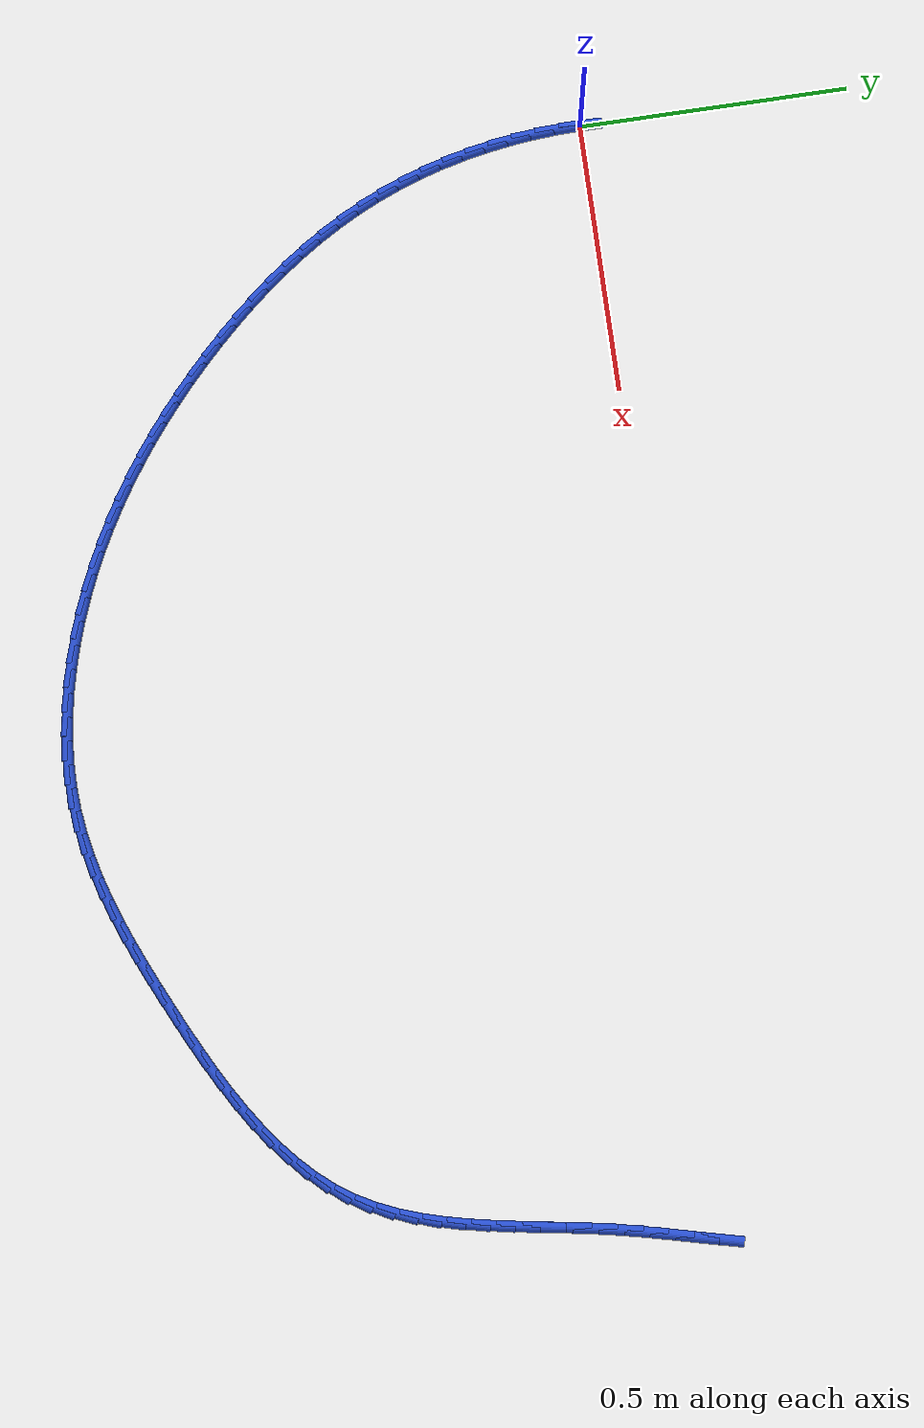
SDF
<sdf version="1.6">
 <world name="default">
  <model name="ground_plane">
   <static>1</static>
   <link name="link">
    <collision name="collision">
     <geometry><plane><normal>0 0 1</normal><size>100 100</size></plane></geometry>
     <surface><friction><ode><mu>100</mu><mu2>50</mu2></ode></friction></surface>
    </collision>
    <visual name="visual">
     <cast_shadows>0</cast_shadows>
     <geometry><plane><normal>0 0 1</normal><size>100 100</size></plane></geometry>
     <material>
      <script><uri>file://media/materials/scripts/gazebo.material</uri><name>Gazebo/WhiteGlow</name></script>
     </material>
    </visual>
   </link>
  </model>
  <model name="line">
   <link name="link_0">
    <pose>-3.469446951953614e-18 -8.326672684688674e-17 0.01 0 1.57 1.5598164352984312</pose>
    <collision name="collision">
     <geometry><cylinder><radius>0.01</radius><length>0.08</length></cylinder></geometry>
    </collision>
    <visual name="visual">
     <material>
      <script><name>Gazebo/Blue</name><uri>file://media/materials/scripts/gazebo.material</uri></script>
     </material>
     <geometry><cylinder><radius>0.01</radius><length>0.08</length></cylinder></geometry>
    </visual>
   </link>
   <link name="link_76">
    <pose>2.0715040072511393 -0.04315046472673503 0.01 0 1.57 1.329160259672644</pose>
    <collision name="collision">
     <geometry><cylinder><radius>0.01</radius><length>0.08</length></cylinder></geometry>
    </collision>
    <visual name="visual">
     <material>
      <script><name>Gazebo/Blue</name><uri>file://media/materials/scripts/gazebo.material</uri></script>
     </material>
     <geometry><cylinder><radius>0.01</radius><length>0.08</length></cylinder></geometry>
    </visual>
   </link>
   <link name="link_77">
    <pose>2.0605961894679887 -0.08740996514425102 0.01 0 1.57 1.324348041001283</pose>
    <collision name="collision">
     <geometry><cylinder><radius>0.01</radius><length>0.08</length></cylinder></geometry>
    </collision>
    <visual name="visual">
     <material>
      <script><name>Gazebo/Blue</name><uri>file://media/materials/scripts/gazebo.material</uri></script>
     </material>
     <geometry><cylinder><radius>0.01</radius><length>0.08</length></cylinder></geometry>
    </visual>
   </link>
   <link name="link_78">
    <pose>2.049366637095627 -0.13204925955263377 0.01 0 1.57 1.3306550899607796</pose>
    <collision name="collision">
     <geometry><cylinder><radius>0.01</radius><length>0.08</length></cylinder></geometry>
    </collision>
    <visual name="visual">
     <material>
      <script><name>Gazebo/Blue</name><uri>file://media/materials/scripts/gazebo.material</uri></script>
     </material>
     <geometry><cylinder><radius>0.01</radius><length>0.08</length></cylinder></geometry>
    </visual>
   </link>
   <link name="link_79">
    <pose>2.038343843348102 -0.17706480116359707 0.01 0 1.57 1.3479057259893066</pose>
    <collision name="collision">
     <geometry><cylinder><radius>0.01</radius><length>0.08</length></cylinder></geometry>
    </collision>
    <visual name="visual">
     <material>
      <script><name>Gazebo/Blue</name><uri>file://media/materials/scripts/gazebo.material</uri></script>
     </material>
     <geometry><cylinder><radius>0.01</radius><length>0.08</length></cylinder></geometry>
    </visual>
   </link>
   <link name="link_80">
    <pose>2.028056301439462 -0.2224530431888515 0.01 0 1.57 1.3736965591251578</pose>
    <collision name="collision">
     <geometry><cylinder><radius>0.01</radius><length>0.08</length></cylinder></geometry>
    </collision>
    <visual name="visual">
     <material>
      <script><name>Gazebo/Blue</name><uri>file://media/materials/scripts/gazebo.material</uri></script>
     </material>
     <geometry><cylinder><radius>0.01</radius><length>0.08</length></cylinder></geometry>
    </visual>
   </link>
   <link name="link_81">
    <pose>2.0189241202239034 -0.2681842852153856 0.01 0 1.57 1.3940105378915313</pose>
    <collision name="collision">
     <geometry><cylinder><radius>0.01</radius><length>0.08</length></cylinder></geometry>
    </collision>
    <visual name="visual">
     <material>
      <script><name>Gazebo/Blue</name><uri>file://media/materials/scripts/gazebo.material</uri></script>
     </material>
     <geometry><cylinder><radius>0.01</radius><length>0.08</length></cylinder></geometry>
    </visual>
   </link>
   <link name="link_82">
    <pose>2.010725881062205 -0.31407402341264123 0.01 0 1.57 1.4038133694773047</pose>
    <collision name="collision">
     <geometry><cylinder><radius>0.01</radius><length>0.08</length></cylinder></geometry>
    </collision>
    <visual name="visual">
     <material>
      <script><name>Gazebo/Blue</name><uri>file://media/materials/scripts/gazebo.material</uri></script>
     </material>
     <geometry><cylinder><radius>0.01</radius><length>0.08</length></cylinder></geometry>
    </visual>
   </link>
   <link name="link_83">
    <pose>2.003005000391621 -0.359881007615379 0.01 0 1.57 1.403082153198955</pose>
    <collision name="collision">
     <geometry><cylinder><radius>0.01</radius><length>0.08</length></cylinder></geometry>
    </collision>
    <visual name="visual">
     <material>
      <script><name>Gazebo/Blue</name><uri>file://media/materials/scripts/gazebo.material</uri></script>
     </material>
     <geometry><cylinder><radius>0.01</radius><length>0.08</length></cylinder></geometry>
    </visual>
   </link>
   <link name="link_84">
    <pose>1.9953045389830517 -0.40536390183450044 0.01 0 1.57 1.3915857797901239</pose>
    <collision name="collision">
     <geometry><cylinder><radius>0.01</radius><length>0.08</length></cylinder></geometry>
    </collision>
    <visual name="visual">
     <material>
      <script><name>Gazebo/Blue</name><uri>file://media/materials/scripts/gazebo.material</uri></script>
     </material>
     <geometry><cylinder><radius>0.01</radius><length>0.08</length></cylinder></geometry>
    </visual>
   </link>
   <link name="link_85">
    <pose>1.9871675576073982 -0.4502813700809036 0.01 0 1.57 1.3688643464746402</pose>
    <collision name="collision">
     <geometry><cylinder><radius>0.01</radius><length>0.08</length></cylinder></geometry>
    </collision>
    <visual name="visual">
     <material>
      <script><name>Gazebo/Blue</name><uri>file://media/materials/scripts/gazebo.material</uri></script>
     </material>
     <geometry><cylinder><radius>0.01</radius><length>0.08</length></cylinder></geometry>
    </visual>
   </link>
   <link name="link_86">
    <pose>1.978137117035562 -0.4943920763654899 0.01 0 1.57 1.3342456611321198</pose>
    <collision name="collision">
     <geometry><cylinder><radius>0.01</radius><length>0.08</length></cylinder></geometry>
    </collision>
    <visual name="visual">
     <material>
      <script><name>Gazebo/Blue</name><uri>file://media/materials/scripts/gazebo.material</uri></script>
     </material>
     <geometry><cylinder><radius>0.01</radius><length>0.08</length></cylinder></geometry>
    </visual>
   </link>
   <link name="link_87">
    <pose>1.9677562780384443 -0.5374546846991586 0.01 0 1.57 1.286906600874213</pose>
    <collision name="collision">
     <geometry><cylinder><radius>0.01</radius><length>0.08</length></cylinder></geometry>
    </collision>
    <visual name="visual">
     <material>
      <script><name>Gazebo/Blue</name><uri>file://media/materials/scripts/gazebo.material</uri></script>
     </material>
     <geometry><cylinder><radius>0.01</radius><length>0.08</length></cylinder></geometry>
    </visual>
   </link>
   <link name="link_88">
    <pose>1.9555681013869468 -0.5792278590928088 0.01 0 1.57 1.2260067676684092</pose>
    <collision name="collision">
     <geometry><cylinder><radius>0.01</radius><length>0.08</length></cylinder></geometry>
    </collision>
    <visual name="visual">
     <material>
      <script><name>Gazebo/Blue</name><uri>file://media/materials/scripts/gazebo.material</uri></script>
     </material>
     <geometry><cylinder><radius>0.01</radius><length>0.08</length></cylinder></geometry>
    </visual>
   </link>
   <link name="link_89">
    <pose>1.9411156478519696 -0.6194702635573418 0.01 0 1.57 1.1509287408636033</pose>
    <collision name="collision">
     <geometry><cylinder><radius>0.01</radius><length>0.08</length></cylinder></geometry>
    </collision>
    <visual name="visual">
     <material>
      <script><name>Gazebo/Blue</name><uri>file://media/materials/scripts/gazebo.material</uri></script>
     </material>
     <geometry><cylinder><radius>0.01</radius><length>0.08</length></cylinder></geometry>
    </visual>
   </link>
   <link name="link_90">
    <pose>1.9239419782044151 -0.6579405621036566 0.01 0 1.57 1.0616457165171986</pose>
    <collision name="collision">
     <geometry><cylinder><radius>0.01</radius><length>0.08</length></cylinder></geometry>
    </collision>
    <visual name="visual">
     <material>
      <script><name>Gazebo/Blue</name><uri>file://media/materials/scripts/gazebo.material</uri></script>
     </material>
     <geometry><cylinder><radius>0.01</radius><length>0.08</length></cylinder></geometry>
    </visual>
   </link>
   <link name="link_91">
    <pose>1.903590153215184 -0.6943974187426525 0.01 0 1.57 0.9605851566401056</pose>
    <collision name="collision">
     <geometry><cylinder><radius>0.01</radius><length>0.08</length></cylinder></geometry>
    </collision>
    <visual name="visual">
     <material>
      <script><name>Gazebo/Blue</name><uri>file://media/materials/scripts/gazebo.material</uri></script>
     </material>
     <geometry><cylinder><radius>0.01</radius><length>0.08</length></cylinder></geometry>
    </visual>
   </link>
   <link name="link_92">
    <pose>1.8796565467230766 -0.7286257782775234 0.01 0 1.57 0.8627954931183984</pose>
    <collision name="collision">
     <geometry><cylinder><radius>0.01</radius><length>0.08</length></cylinder></geometry>
    </collision>
    <visual name="visual">
     <material>
      <script><name>Gazebo/Blue</name><uri>file://media/materials/scripts/gazebo.material</uri></script>
     </material>
     <geometry><cylinder><radius>0.01</radius><length>0.08</length></cylinder></geometry>
    </visual>
   </link>
   <link name="link_93">
    <pose>1.852236380662667 -0.7606564937607387 0.01 0 1.57 0.7764635203139421</pose>
    <collision name="collision">
     <geometry><cylinder><radius>0.01</radius><length>0.08</length></cylinder></geometry>
    </collision>
    <visual name="visual">
     <material>
      <script><name>Gazebo/Blue</name><uri>file://media/materials/scripts/gazebo.material</uri></script>
     </material>
     <geometry><cylinder><radius>0.01</radius><length>0.08</length></cylinder></geometry>
    </visual>
   </link>
   <link name="link_94">
    <pose>1.8216972805991625 -0.7906547002044964 0.01 0 1.57 0.7016564959902788</pose>
    <collision name="collision">
     <geometry><cylinder><radius>0.01</radius><length>0.08</length></cylinder></geometry>
    </collision>
    <visual name="visual">
     <material>
      <script><name>Gazebo/Blue</name><uri>file://media/materials/scripts/gazebo.material</uri></script>
     </material>
     <geometry><cylinder><radius>0.01</radius><length>0.08</length></cylinder></geometry>
    </visual>
   </link>
   <link name="link_95">
    <pose>1.788409631267639 -0.8187868927597547 0.01 0 1.57 0.6377941107638713</pose>
    <collision name="collision">
     <geometry><cylinder><radius>0.01</radius><length>0.08</length></cylinder></geometry>
    </collision>
    <visual name="visual">
     <material>
      <script><name>Gazebo/Blue</name><uri>file://media/materials/scripts/gazebo.material</uri></script>
     </material>
     <geometry><cylinder><radius>0.01</radius><length>0.08</length></cylinder></geometry>
    </visual>
   </link>
   <link name="link_96">
    <pose>1.7527438174031709 -0.8452195665774717 0.01 0 1.57 0.5840213181894505</pose>
    <collision name="collision">
     <geometry><cylinder><radius>0.01</radius><length>0.08</length></cylinder></geometry>
    </collision>
    <visual name="visual">
     <material>
      <script><name>Gazebo/Blue</name><uri>file://media/materials/scripts/gazebo.material</uri></script>
     </material>
     <geometry><cylinder><radius>0.01</radius><length>0.08</length></cylinder></geometry>
    </visual>
   </link>
   <link name="link_97">
    <pose>1.7150702237408317 -0.870119216808607 0.01 0 1.57 0.5394187411603008</pose>
    <collision name="collision">
     <geometry><cylinder><radius>0.01</radius><length>0.08</length></cylinder></geometry>
    </collision>
    <visual name="visual">
     <material>
      <script><name>Gazebo/Blue</name><uri>file://media/materials/scripts/gazebo.material</uri></script>
     </material>
     <geometry><cylinder><radius>0.01</radius><length>0.08</length></cylinder></geometry>
    </visual>
   </link>
   <link name="link_98">
    <pose>1.675759235015697 -0.893652338604118 0.01 0 1.57 0.5031305489377355</pose>
    <collision name="collision">
     <geometry><cylinder><radius>0.01</radius><length>0.08</length></cylinder></geometry>
    </collision>
    <visual name="visual">
     <material>
      <script><name>Gazebo/Blue</name><uri>file://media/materials/scripts/gazebo.material</uri></script>
     </material>
     <geometry><cylinder><radius>0.01</radius><length>0.08</length></cylinder></geometry>
    </visual>
   </link>
   <link name="link_99">
    <pose>1.6351812359628393 -0.9159854271149641 0.01 0 1.57 0.4744336564687271</pose>
    <collision name="collision">
     <geometry><cylinder><radius>0.01</radius><length>0.08</length></cylinder></geometry>
    </collision>
    <visual name="visual">
     <material>
      <script><name>Gazebo/Blue</name><uri>file://media/materials/scripts/gazebo.material</uri></script>
     </material>
     <geometry><cylinder><radius>0.01</radius><length>0.08</length></cylinder></geometry>
    </visual>
   </link>
   <link name="link_100">
    <pose>1.593706611317334 -0.9372849774921037 0.01 0 1.57 0.45277180861788796</pose>
    <collision name="collision">
     <geometry><cylinder><radius>0.01</radius><length>0.08</length></cylinder></geometry>
    </collision>
    <visual name="visual">
     <material>
      <script><name>Gazebo/Blue</name><uri>file://media/materials/scripts/gazebo.material</uri></script>
     </material>
     <geometry><cylinder><radius>0.01</radius><length>0.08</length></cylinder></geometry>
    </visual>
   </link>
   <link name="link_101">
    <pose>1.5517057458142562 -0.9577174848864947 0.01 0 1.57 0.4377715025479842</pose>
    <collision name="collision">
     <geometry><cylinder><radius>0.01</radius><length>0.08</length></cylinder></geometry>
    </collision>
    <visual name="visual">
     <material>
      <script><name>Gazebo/Blue</name><uri>file://media/materials/scripts/gazebo.material</uri></script>
     </material>
     <geometry><cylinder><radius>0.01</radius><length>0.08</length></cylinder></geometry>
    </visual>
   </link>
   <link name="link_102">
    <pose>1.509548994104571 -0.9774494148581918 0.01 0 1.57 0.4266758148248366</pose>
    <collision name="collision">
     <geometry><cylinder><radius>0.01</radius><length>0.08</length></cylinder></geometry>
    </collision>
    <visual name="visual">
     <material>
      <script><name>Gazebo/Blue</name><uri>file://media/materials/scripts/gazebo.material</uri></script>
     </material>
     <geometry><cylinder><radius>0.01</radius><length>0.08</length></cylinder></geometry>
    </visual>
   </link>
   <link name="link_103">
    <pose>1.4675158350894577 -0.996557847047718 0.01 0 1.57 0.4111076274381945</pose>
    <collision name="collision">
     <geometry><cylinder><radius>0.01</radius><length>0.08</length></cylinder></geometry>
    </collision>
    <visual name="visual">
     <material>
      <script><name>Gazebo/Blue</name><uri>file://media/materials/scripts/gazebo.material</uri></script>
     </material>
     <geometry><cylinder><radius>0.01</radius><length>0.08</length></cylinder></geometry>
    </visual>
   </link>
   <link name="link_104">
    <pose>1.4255945073971952 -1.0148333954580837 0.01 0 1.57 0.389208058354431</pose>
    <collision name="collision">
     <geometry><cylinder><radius>0.01</radius><length>0.08</length></cylinder></geometry>
    </collision>
    <visual name="visual">
     <material>
      <script><name>Gazebo/Blue</name><uri>file://media/materials/scripts/gazebo.material</uri></script>
     </material>
     <geometry><cylinder><radius>0.01</radius><length>0.08</length></cylinder></geometry>
    </visual>
   </link>
   <link name="link_105">
    <pose>1.3837150258001334 -1.0320094047667325 0.01 0 1.57 0.36074525830218057</pose>
    <collision name="collision">
     <geometry><cylinder><radius>0.01</radius><length>0.08</length></cylinder></geometry>
    </collision>
    <visual name="visual">
     <material>
      <script><name>Gazebo/Blue</name><uri>file://media/materials/scripts/gazebo.material</uri></script>
     </material>
     <geometry><cylinder><radius>0.01</radius><length>0.08</length></cylinder></geometry>
    </visual>
   </link>
   <link name="link_106">
    <pose>1.3418074050706228 -1.0478192196511071 0.01 0 1.57 0.32549641453412326</pose>
    <collision name="collision">
     <geometry><cylinder><radius>0.01</radius><length>0.08</length></cylinder></geometry>
    </collision>
    <visual name="visual">
     <material>
      <script><name>Gazebo/Blue</name><uri>file://media/materials/scripts/gazebo.material</uri></script>
     </material>
     <geometry><cylinder><radius>0.01</radius><length>0.08</length></cylinder></geometry>
    </visual>
   </link>
   <link name="link_107">
    <pose>1.2998016599810125 -1.0619961847886508 0.01 0 1.57 0.28328601926004393</pose>
    <collision name="collision">
     <geometry><cylinder><radius>0.01</radius><length>0.08</length></cylinder></geometry>
    </collision>
    <visual name="visual">
     <material>
      <script><name>Gazebo/Blue</name><uri>file://media/materials/scripts/gazebo.material</uri></script>
     </material>
     <geometry><cylinder><radius>0.01</radius><length>0.08</length></cylinder></geometry>
    </visual>
   </link>
   <link name="link_108">
    <pose>1.2576278053036536 -1.0742736448568064 0.01 0 1.57 0.23403806350312972</pose>
    <collision name="collision">
     <geometry><cylinder><radius>0.01</radius><length>0.08</length></cylinder></geometry>
    </collision>
    <visual name="visual">
     <material>
      <script><name>Gazebo/Blue</name><uri>file://media/materials/scripts/gazebo.material</uri></script>
     </material>
     <geometry><cylinder><radius>0.01</radius><length>0.08</length></cylinder></geometry>
    </visual>
   </link>
   <link name="link_109">
    <pose>1.215215855810896 -1.0843849445330171 0.01 0 1.57 0.1778407656540356</pose>
    <collision name="collision">
     <geometry><cylinder><radius>0.01</radius><length>0.08</length></cylinder></geometry>
    </collision>
    <visual name="visual">
     <material>
      <script><name>Gazebo/Blue</name><uri>file://media/materials/scripts/gazebo.material</uri></script>
     </material>
     <geometry><cylinder><radius>0.01</radius><length>0.08</length></cylinder></geometry>
    </visual>
   </link>
   <link name="link_110">
    <pose>1.1724958262750889 -1.0920634284947262 0.01 0 1.57 0.11501755951792855</pose>
    <collision name="collision">
     <geometry><cylinder><radius>0.01</radius><length>0.08</length></cylinder></geometry>
    </collision>
    <visual name="visual">
     <material>
      <script><name>Gazebo/Blue</name><uri>file://media/materials/scripts/gazebo.material</uri></script>
     </material>
     <geometry><cylinder><radius>0.01</radius><length>0.08</length></cylinder></geometry>
    </visual>
   </link>
   <link name="link_111">
    <pose>1.1293977314685835 -1.097042441419376 0.01 0 1.57 0.04678879548639768</pose>
    <collision name="collision">
     <geometry><cylinder><radius>0.01</radius><length>0.08</length></cylinder></geometry>
    </collision>
    <visual name="visual">
     <material>
      <script><name>Gazebo/Blue</name><uri>file://media/materials/scripts/gazebo.material</uri></script>
     </material>
     <geometry><cylinder><radius>0.01</radius><length>0.08</length></cylinder></geometry>
    </visual>
   </link>
   <link name="link_112">
    <pose>1.0858652700116629 -1.0990807604961519 0.01 0 1.57 -0.020163568707413395</pose>
    <collision name="collision">
     <geometry><cylinder><radius>0.01</radius><length>0.08</length></cylinder></geometry>
    </collision>
    <visual name="visual">
     <material>
      <script><name>Gazebo/Blue</name><uri>file://media/materials/scripts/gazebo.material</uri></script>
     </material>
     <geometry><cylinder><radius>0.01</radius><length>0.08</length></cylinder></geometry>
    </visual>
   </link>
   <link name="link_113">
    <pose>1.0419812898430825 -1.098195782908651 0.01 0 1.57 -0.08240773458560884</pose>
    <collision name="collision">
     <geometry><cylinder><radius>0.01</radius><length>0.08</length></cylinder></geometry>
    </collision>
    <visual name="visual">
     <material>
      <script><name>Gazebo/Blue</name><uri>file://media/materials/scripts/gazebo.material</uri></script>
     </material>
     <geometry><cylinder><radius>0.01</radius><length>0.08</length></cylinder></geometry>
    </visual>
   </link>
   <link name="link_114">
    <pose>0.9979097760296226 -1.094555705598788 0.01 0 1.57 -0.14025086041407026</pose>
    <collision name="collision">
     <geometry><cylinder><radius>0.01</radius><length>0.08</length></cylinder></geometry>
    </collision>
    <visual name="visual">
     <material>
      <script><name>Gazebo/Blue</name><uri>file://media/materials/scripts/gazebo.material</uri></script>
     </material>
     <geometry><cylinder><radius>0.01</radius><length>0.08</length></cylinder></geometry>
    </visual>
   </link>
   <link name="link_115">
    <pose>0.9538157259577992 -1.0883306069846328 0.01 0 1.57 -0.19410578158353997</pose>
    <collision name="collision">
     <geometry><cylinder><radius>0.01</radius><length>0.08</length></cylinder></geometry>
    </collision>
    <visual name="visual">
     <material>
      <script><name>Gazebo/Blue</name><uri>file://media/materials/scripts/gazebo.material</uri></script>
     </material>
     <geometry><cylinder><radius>0.01</radius><length>0.08</length></cylinder></geometry>
    </visual>
   </link>
   <link name="link_116">
    <pose>0.9098641370141283 -1.0796905654842555 0.01 0 1.57 -0.2444151683607285</pose>
    <collision name="collision">
     <geometry><cylinder><radius>0.01</radius><length>0.08</length></cylinder></geometry>
    </collision>
    <visual name="visual">
     <material>
      <script><name>Gazebo/Blue</name><uri>file://media/materials/scripts/gazebo.material</uri></script>
     </material>
     <geometry><cylinder><radius>0.01</radius><length>0.08</length></cylinder></geometry>
    </visual>
   </link>
   <link name="link_117">
    <pose>0.8662200065851273 -1.0688056595157256 0.01 0 1.57 -0.2916308219514238</pose>
    <collision name="collision">
     <geometry><cylinder><radius>0.01</radius><length>0.08</length></cylinder></geometry>
    </collision>
    <visual name="visual">
     <material>
      <script><name>Gazebo/Blue</name><uri>file://media/materials/scripts/gazebo.material</uri></script>
     </material>
     <geometry><cylinder><radius>0.01</radius><length>0.08</length></cylinder></geometry>
    </visual>
   </link>
   <link name="link_118">
    <pose>0.8230483320573105 -1.0558459674971126 0.01 0 1.57 -0.33620185513020273</pose>
    <collision name="collision">
     <geometry><cylinder><radius>0.01</radius><length>0.08</length></cylinder></geometry>
    </collision>
    <visual name="visual">
     <material>
      <script><name>Gazebo/Blue</name><uri>file://media/materials/scripts/gazebo.material</uri></script>
     </material>
     <geometry><cylinder><radius>0.01</radius><length>0.08</length></cylinder></geometry>
    </visual>
   </link>
   <link name="link_119">
    <pose>0.7805141108171963 -1.040981567846487 0.01 0 1.57 -0.378578694579235</pose>
    <collision name="collision">
     <geometry><cylinder><radius>0.01</radius><length>0.08</length></cylinder></geometry>
    </collision>
    <visual name="visual">
     <material>
      <script><name>Gazebo/Blue</name><uri>file://media/materials/scripts/gazebo.material</uri></script>
     </material>
     <geometry><cylinder><radius>0.01</radius><length>0.08</length></cylinder></geometry>
    </visual>
   </link>
   <link name="link_120">
    <pose>0.7387804064145477 -1.024381335525108 0.01 0 1.57 -0.4194504736343555</pose>
    <collision name="collision">
     <geometry><cylinder><radius>0.01</radius><length>0.08</length></cylinder></geometry>
    </collision>
    <visual name="visual">
     <material>
      <script><name>Gazebo/Blue</name><uri>file://media/materials/scripts/gazebo.material</uri></script>
     </material>
     <geometry><cylinder><radius>0.01</radius><length>0.08</length></cylinder></geometry>
    </visual>
   </link>
   <link name="link_121">
    <pose>0.6979379341349345 -1.0061691220396067 0.01 0 1.57 -0.45926047987700364</pose>
    <collision name="collision">
     <geometry><cylinder><radius>0.01</radius><length>0.08</length></cylinder></geometry>
    </collision>
    <visual name="visual">
     <material>
      <script><name>Gazebo/Blue</name><uri>file://media/materials/scripts/gazebo.material</uri></script>
     </material>
     <geometry><cylinder><radius>0.01</radius><length>0.08</length></cylinder></geometry>
    </visual>
   </link>
   <link name="link_122">
    <pose>0.6579850313003628 -0.986411290647277 0.01 0 1.57 -0.4979524151502297</pose>
    <collision name="collision">
     <geometry><cylinder><radius>0.01</radius><length>0.08</length></cylinder></geometry>
    </collision>
    <visual name="visual">
     <material>
      <script><name>Gazebo/Blue</name><uri>file://media/materials/scripts/gazebo.material</uri></script>
     </material>
     <geometry><cylinder><radius>0.01</radius><length>0.08</length></cylinder></geometry>
    </visual>
   </link>
   <link name="link_123">
    <pose>0.6189140202995671 -0.9651704614185065 0.01 0 1.57 -0.5354600196006363</pose>
    <collision name="collision">
     <geometry><cylinder><radius>0.01</radius><length>0.08</length></cylinder></geometry>
    </collision>
    <visual name="visual">
     <material>
      <script><name>Gazebo/Blue</name><uri>file://media/materials/scripts/gazebo.material</uri></script>
     </material>
     <geometry><cylinder><radius>0.01</radius><length>0.08</length></cylinder></geometry>
    </visual>
   </link>
   <link name="link_124">
    <pose>0.5807172235212831 -0.9425092544236832 0.01 0 1.57 -0.5717342941273684</pose>
    <collision name="collision">
     <geometry><cylinder><radius>0.01</radius><length>0.08</length></cylinder></geometry>
    </collision>
    <visual name="visual">
     <material>
      <script><name>Gazebo/Blue</name><uri>file://media/materials/scripts/gazebo.material</uri></script>
     </material>
     <geometry><cylinder><radius>0.01</radius><length>0.08</length></cylinder></geometry>
    </visual>
   </link>
   <link name="link_125">
    <pose>0.5433869633542462 -0.9184902897331948 0.01 0 1.57 -0.6067423458446698</pose>
    <collision name="collision">
     <geometry><cylinder><radius>0.01</radius><length>0.08</length></cylinder></geometry>
    </collision>
    <visual name="visual">
     <material>
      <script><name>Gazebo/Blue</name><uri>file://media/materials/scripts/gazebo.material</uri></script>
     </material>
     <geometry><cylinder><radius>0.01</radius><length>0.08</length></cylinder></geometry>
    </visual>
   </link>
   <link name="link_126">
    <pose>0.506915562187191 -0.8931761874174291 0.01 0 1.57 -0.6404659226778432</pose>
    <collision name="collision">
     <geometry><cylinder><radius>0.01</radius><length>0.08</length></cylinder></geometry>
    </collision>
    <visual name="visual">
     <material>
      <script><name>Gazebo/Blue</name><uri>file://media/materials/scripts/gazebo.material</uri></script>
     </material>
     <geometry><cylinder><radius>0.01</radius><length>0.08</length></cylinder></geometry>
    </visual>
   </link>
   <link name="link_127">
    <pose>0.4712953424088539 -0.8666295675467746 0.01 0 1.57 -0.6728997577431134</pose>
    <collision name="collision">
     <geometry><cylinder><radius>0.01</radius><length>0.08</length></cylinder></geometry>
    </collision>
    <visual name="visual">
     <material>
      <script><name>Gazebo/Blue</name><uri>file://media/materials/scripts/gazebo.material</uri></script>
     </material>
     <geometry><cylinder><radius>0.01</radius><length>0.08</length></cylinder></geometry>
    </visual>
   </link>
   <link name="link_128">
    <pose>0.43651862640796874 -0.8389130501916181 0.01 0 1.57 -0.7040498292487191</pose>
    <collision name="collision">
     <geometry><cylinder><radius>0.01</radius><length>0.08</length></cylinder></geometry>
    </collision>
    <visual name="visual">
     <material>
      <script><name>Gazebo/Blue</name><uri>file://media/materials/scripts/gazebo.material</uri></script>
     </material>
     <geometry><cylinder><radius>0.01</radius><length>0.08</length></cylinder></geometry>
    </visual>
   </link>
   <link name="link_129">
    <pose>0.40257773657327156 -0.810089255422348 0.01 0 1.57 -0.733931622515453</pose>
    <collision name="collision">
     <geometry><cylinder><radius>0.01</radius><length>0.08</length></cylinder></geometry>
    </collision>
    <visual name="visual">
     <material>
      <script><name>Gazebo/Blue</name><uri>file://media/materials/scripts/gazebo.material</uri></script>
     </material>
     <geometry><cylinder><radius>0.01</radius><length>0.08</length></cylinder></geometry>
    </visual>
   </link>
   <link name="link_130">
    <pose>0.3694649952934981 -0.7802208033093527 0.01 0 1.57 -0.7625684602891009</pose>
    <collision name="collision">
     <geometry><cylinder><radius>0.01</radius><length>0.08</length></cylinder></geometry>
    </collision>
    <visual name="visual">
     <material>
      <script><name>Gazebo/Blue</name><uri>file://media/materials/scripts/gazebo.material</uri></script>
     </material>
     <geometry><cylinder><radius>0.01</radius><length>0.08</length></cylinder></geometry>
    </visual>
   </link>
   <link name="link_131">
    <pose>0.3371727249573825 -0.7493703139230189 0.01 0 1.57 -0.7902639805560009</pose>
    <collision name="collision">
     <geometry><cylinder><radius>0.01</radius><length>0.08</length></cylinder></geometry>
    </collision>
    <visual name="visual">
     <material>
      <script><name>Gazebo/Blue</name><uri>file://media/materials/scripts/gazebo.material</uri></script>
     </material>
     <geometry><cylinder><radius>0.01</radius><length>0.08</length></cylinder></geometry>
    </visual>
   </link>
   <link name="link_132">
    <pose>0.3057050552435098 -0.7175949125601011 0.01 0 1.57 -0.8190907465038635</pose>
    <collision name="collision">
     <geometry><cylinder><radius>0.01</radius><length>0.08</length></cylinder></geometry>
    </collision>
    <visual name="visual">
     <material>
      <script><name>Gazebo/Blue</name><uri>file://media/materials/scripts/gazebo.material</uri></script>
     </material>
     <geometry><cylinder><radius>0.01</radius><length>0.08</length></cylinder></geometry>
    </visual>
   </link>
   <link name="link_133">
    <pose>0.2751528743847074 -0.6849113495775844 0.01 0 1.57 -0.8500599981093695</pose>
    <collision name="collision">
     <geometry><cylinder><radius>0.01</radius><length>0.08</length></cylinder></geometry>
    </collision>
    <visual name="visual">
     <material>
      <script><name>Gazebo/Blue</name><uri>file://media/materials/scripts/gazebo.material</uri></script>
     </material>
     <geometry><cylinder><radius>0.01</radius><length>0.08</length></cylinder></geometry>
    </visual>
   </link>
   <link name="link_134">
    <pose>0.2456457594392124 -0.6513183706641088 0.01 0 1.57 -0.8832991504442635</pose>
    <collision name="collision">
     <geometry><cylinder><radius>0.01</radius><length>0.08</length></cylinder></geometry>
    </collision>
    <visual name="visual">
     <material>
      <script><name>Gazebo/Blue</name><uri>file://media/materials/scripts/gazebo.material</uri></script>
     </material>
     <geometry><cylinder><radius>0.01</radius><length>0.08</length></cylinder></geometry>
    </visual>
   </link>
   <link name="link_135">
    <pose>0.21731346578558186 -0.616814638523157 0.01 0 1.57 -0.9189298476828444</pose>
    <collision name="collision">
     <geometry><cylinder><radius>0.01</radius><length>0.08</length></cylinder></geometry>
    </collision>
    <visual name="visual">
     <material>
      <script><name>Gazebo/Blue</name><uri>file://media/materials/scripts/gazebo.material</uri></script>
     </material>
     <geometry><cylinder><radius>0.01</radius><length>0.08</length></cylinder></geometry>
    </visual>
   </link>
   <link name="link_136">
    <pose>0.19028574880237176 -0.5813988158582111 0.01 0 1.57 -0.9570671317661855</pose>
    <collision name="collision">
     <geometry><cylinder><radius>0.01</radius><length>0.08</length></cylinder></geometry>
    </collision>
    <visual name="visual">
     <material>
      <script><name>Gazebo/Blue</name><uri>file://media/materials/scripts/gazebo.material</uri></script>
     </material>
     <geometry><cylinder><radius>0.01</radius><length>0.08</length></cylinder></geometry>
    </visual>
   </link>
   <link name="link_137">
    <pose>0.16469236386813915 -0.5450695653727538 0.01 0 1.57 -0.9978131147379058</pose>
    <collision name="collision">
     <geometry><cylinder><radius>0.01</radius><length>0.08</length></cylinder></geometry>
    </collision>
    <visual name="visual">
     <material>
      <script><name>Gazebo/Blue</name><uri>file://media/materials/scripts/gazebo.material</uri></script>
     </material>
     <geometry><cylinder><radius>0.01</radius><length>0.08</length></cylinder></geometry>
    </visual>
   </link>
   <link name="link_138">
    <pose>0.14066306636144138 -0.5078255497702686 0.01 0 1.57 -1.0412491868298368</pose>
    <collision name="collision">
     <geometry><cylinder><radius>0.01</radius><length>0.08</length></cylinder></geometry>
    </collision>
    <visual name="visual">
     <material>
      <script><name>Gazebo/Blue</name><uri>file://media/materials/scripts/gazebo.material</uri></script>
     </material>
     <geometry><cylinder><radius>0.01</radius><length>0.08</length></cylinder></geometry>
    </visual>
   </link>
   <link name="link_139">
    <pose>0.11832761166083419 -0.46966543175423686 0.01 0 1.57 -1.0874267891838285</pose>
    <collision name="collision">
     <geometry><cylinder><radius>0.01</radius><length>0.08</length></cylinder></geometry>
    </collision>
    <visual name="visual">
     <material>
      <script><name>Gazebo/Blue</name><uri>file://media/materials/scripts/gazebo.material</uri></script>
     </material>
     <geometry><cylinder><radius>0.01</radius><length>0.08</length></cylinder></geometry>
    </visual>
   </link>
   <link name="link_140">
    <pose>0.09781575514487519 -0.43058787402814236 0.01 0 1.57 -1.1363145249576734</pose>
    <collision name="collision">
     <geometry><cylinder><radius>0.01</radius><length>0.08</length></cylinder></geometry>
    </collision>
    <visual name="visual">
     <material>
      <script><name>Gazebo/Blue</name><uri>file://media/materials/scripts/gazebo.material</uri></script>
     </material>
     <geometry><cylinder><radius>0.01</radius><length>0.08</length></cylinder></geometry>
    </visual>
   </link>
   <link name="link_141">
    <pose>0.07925558155147962 -0.3905923878355443 0.01 0 1.57 -1.1862357922271558</pose>
    <collision name="collision">
     <geometry><cylinder><radius>0.01</radius><length>0.08</length></cylinder></geometry>
    </collision>
    <visual name="visual">
     <material>
      <script><name>Gazebo/Blue</name><uri>file://media/materials/scripts/gazebo.material</uri></script>
     </material>
     <geometry><cylinder><radius>0.01</radius><length>0.08</length></cylinder></geometry>
    </visual>
   </link>
   <link name="link_142">
    <pose>0.06271057493287087 -0.349711295947211 0.01 0 1.57 -1.2350208158136557</pose>
    <collision name="collision">
     <geometry><cylinder><radius>0.01</radius><length>0.08</length></cylinder></geometry>
    </collision>
    <visual name="visual">
     <material>
      <script><name>Gazebo/Blue</name><uri>file://media/materials/scripts/gazebo.material</uri></script>
     </material>
     <geometry><cylinder><radius>0.01</radius><length>0.08</length></cylinder></geometry>
    </visual>
   </link>
   <link name="link_143">
    <pose>0.04816050007980464 -0.3080194432340412 0.01 0 1.57 -1.2825111704678926</pose>
    <collision name="collision">
     <geometry><cylinder><radius>0.01</radius><length>0.08</length></cylinder></geometry>
    </collision>
    <visual name="visual">
     <material>
      <script><name>Gazebo/Blue</name><uri>file://media/materials/scripts/gazebo.material</uri></script>
     </material>
     <geometry><cylinder><radius>0.01</radius><length>0.08</length></cylinder></geometry>
    </visual>
   </link>
   <link name="link_144">
    <pose>0.0355795466881909 -0.26559450623000497 0.01 0 1.57 -1.3287132538368165</pose>
    <collision name="collision">
     <geometry><cylinder><radius>0.01</radius><length>0.08</length></cylinder></geometry>
    </collision>
    <visual name="visual">
     <material>
      <script><name>Gazebo/Blue</name><uri>file://media/materials/scripts/gazebo.material</uri></script>
     </material>
     <geometry><cylinder><radius>0.01</radius><length>0.08</length></cylinder></geometry>
    </visual>
   </link>
   <link name="link_145">
    <pose>0.024941904453940494 -0.22251416146907474 0.01 0 1.57 -1.373653482446567</pose>
    <collision name="collision">
     <geometry><cylinder><radius>0.01</radius><length>0.08</length></cylinder></geometry>
    </collision>
    <visual name="visual">
     <material>
      <script><name>Gazebo/Blue</name><uri>file://media/materials/scripts/gazebo.material</uri></script>
     </material>
     <geometry><cylinder><radius>0.01</radius><length>0.08</length></cylinder></geometry>
    </visual>
   </link>
   <link name="link_146">
    <pose>0.016221763072963493 -0.1788560854852207 0.01 0 1.57 -1.4173751936479329</pose>
    <collision name="collision">
     <geometry><cylinder><radius>0.01</radius><length>0.08</length></cylinder></geometry>
    </collision>
    <visual name="visual">
     <material>
      <script><name>Gazebo/Blue</name><uri>file://media/materials/scripts/gazebo.material</uri></script>
     </material>
     <geometry><cylinder><radius>0.01</radius><length>0.08</length></cylinder></geometry>
    </visual>
   </link>
   <link name="link_147">
    <pose>0.009393312241170515 -0.1346979548124147 0.01 0 1.57 -1.4599356859624688</pose>
    <collision name="collision">
     <geometry><cylinder><radius>0.01</radius><length>0.08</length></cylinder></geometry>
    </collision>
    <visual name="visual">
     <material>
      <script><name>Gazebo/Blue</name><uri>file://media/materials/scripts/gazebo.material</uri></script>
     </material>
     <geometry><cylinder><radius>0.01</radius><length>0.08</length></cylinder></geometry>
    </visual>
   </link>
   <link name="link_148">
    <pose>0.00443074165447205 -0.09011744598462887 0.01 0 1.57 -1.50140350675044</pose>
    <collision name="collision">
     <geometry><cylinder><radius>0.01</radius><length>0.08</length></cylinder></geometry>
    </collision>
    <visual name="visual">
     <material>
      <script><name>Gazebo/Blue</name><uri>file://media/materials/scripts/gazebo.material</uri></script>
     </material>
     <geometry><cylinder><radius>0.01</radius><length>0.08</length></cylinder></geometry>
    </visual>
   </link>
   <link name="link_149">
    <pose>0.0013082410087783642 -0.04519223553583305 0.01 0 1.57 -1.5418560511403374</pose>
    <collision name="collision">
     <geometry><cylinder><radius>0.01</radius><length>0.08</length></cylinder></geometry>
    </collision>
    <visual name="visual">
     <material>
      <script><name>Gazebo/Blue</name><uri>file://media/materials/scripts/gazebo.material</uri></script>
     </material>
     <geometry><cylinder><radius>0.01</radius><length>0.08</length></cylinder></geometry>
    </visual>
   </link>
   <link name="link_150">
    <pose>-1.9081958235744878e-17 -2.7755575615628914e-17 0.01 0 1.57 1.5602151535726956</pose>
    <collision name="collision">
     <geometry><cylinder><radius>0.01</radius><length>0.08</length></cylinder></geometry>
    </collision>
    <visual name="visual">
     <material>
      <script><name>Gazebo/Blue</name><uri>file://media/materials/scripts/gazebo.material</uri></script>
     </material>
     <geometry><cylinder><radius>0.01</radius><length>0.08</length></cylinder></geometry>
    </visual>
   </link>
  </model>
 </world>
</sdf>
